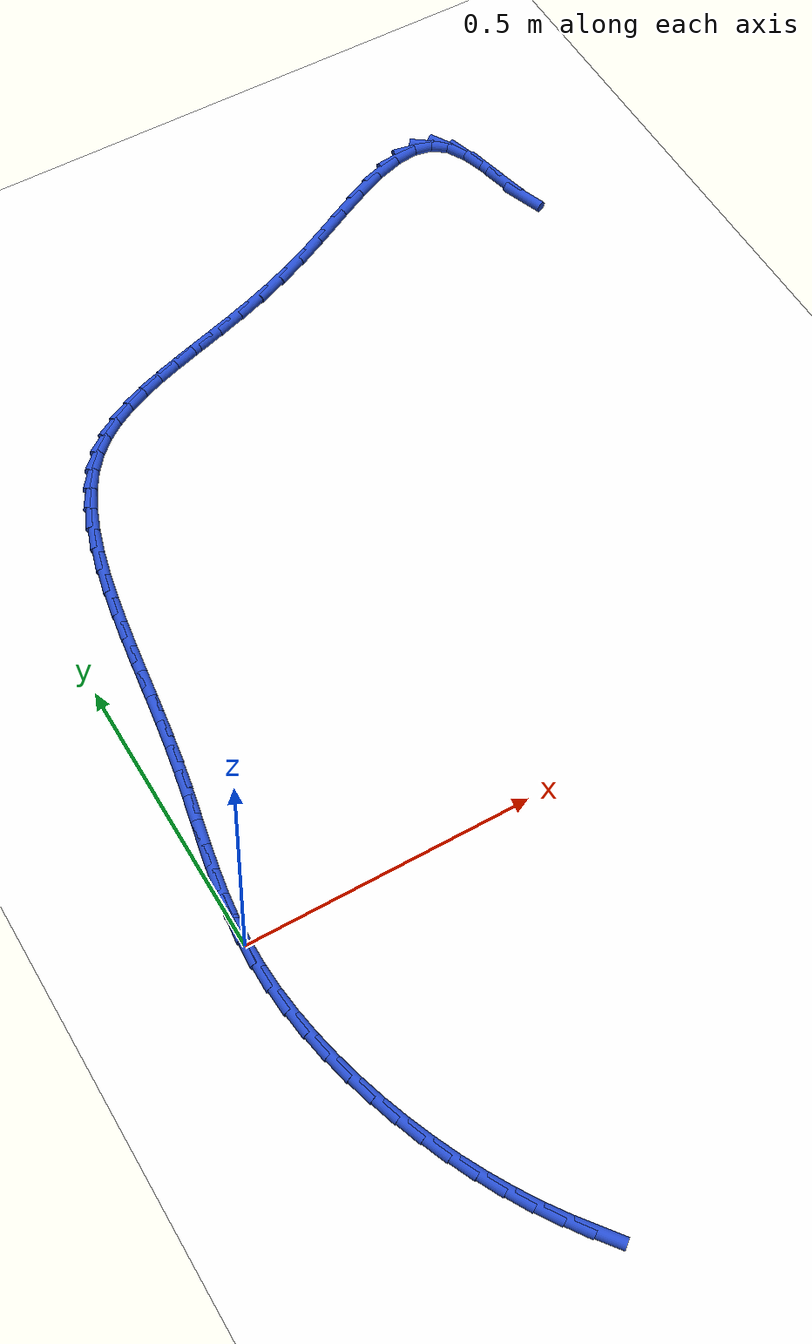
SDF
<sdf version="1.6">
 <world name="default">
  <model name="ground_plane">
   <static>1</static>
   <link name="link">
    <collision name="collision">
     <geometry><plane><normal>0 0 1</normal><size>100 100</size></plane></geometry>
     <surface><friction><ode><mu>100</mu><mu2>50</mu2></ode></friction></surface>
    </collision>
    <visual name="visual">
     <cast_shadows>0</cast_shadows>
     <geometry><plane><normal>0 0 1</normal><size>100 100</size></plane></geometry>
     <material>
      <script><uri>file://media/materials/scripts/gazebo.material</uri><name>Gazebo/WhiteGlow</name></script>
     </material>
    </visual>
   </link>
  </model>
  <model name="line">
   <link name="link_0">
    <pose>2.7755575615628914e-17 -2.0816681711721685e-17 0.01 0 1.57 1.5020953391786414</pose>
    <collision name="collision">
     <geometry><cylinder><radius>0.01</radius><length>0.08</length></cylinder></geometry>
    </collision>
    <visual name="visual">
     <material>
      <script><name>Gazebo/Blue</name><uri>file://media/materials/scripts/gazebo.material</uri></script>
     </material>
     <geometry><cylinder><radius>0.01</radius><length>0.08</length></cylinder></geometry>
    </visual>
   </link>
   <link name="link_1">
    <pose>0.003000123174723722 0.04360056199078417 0.01 0 1.57 1.4487719705072435</pose>
    <collision name="collision">
     <geometry><cylinder><radius>0.01</radius><length>0.08</length></cylinder></geometry>
    </collision>
    <visual name="visual">
     <material>
      <script><name>Gazebo/Blue</name><uri>file://media/materials/scripts/gazebo.material</uri></script>
     </material>
     <geometry><cylinder><radius>0.01</radius><length>0.08</length></cylinder></geometry>
    </visual>
   </link>
   <link name="link_2">
    <pose>0.008314937787957541 0.08693952689009236 0.01 0 1.57 1.4082826827325916</pose>
    <collision name="collision">
     <geometry><cylinder><radius>0.01</radius><length>0.08</length></cylinder></geometry>
    </collision>
    <visual name="visual">
     <material>
      <script><name>Gazebo/Blue</name><uri>file://media/materials/scripts/gazebo.material</uri></script>
     </material>
     <geometry><cylinder><radius>0.01</radius><length>0.08</length></cylinder></geometry>
    </visual>
   </link>
   <link name="link_3">
    <pose>0.01541908743098577 0.13026818073630764 0.01 0 1.57 1.3810436912425075</pose>
    <collision name="collision">
     <geometry><cylinder><radius>0.01</radius><length>0.08</length></cylinder></geometry>
    </collision>
    <visual name="visual">
     <material>
      <script><name>Gazebo/Blue</name><uri>file://media/materials/scripts/gazebo.material</uri></script>
     </material>
     <geometry><cylinder><radius>0.01</radius><length>0.08</length></cylinder></geometry>
    </visual>
   </link>
   <link name="link_4">
    <pose>0.023787215695092654 0.17383780956781278 0.01 0 1.57 1.3669851679821063</pose>
    <collision name="collision">
     <geometry><cylinder><radius>0.01</radius><length>0.08</length></cylinder></geometry>
    </collision>
    <visual name="visual">
     <material>
      <script><name>Gazebo/Blue</name><uri>file://media/materials/scripts/gazebo.material</uri></script>
     </material>
     <geometry><cylinder><radius>0.01</radius><length>0.08</length></cylinder></geometry>
    </visual>
   </link>
   <link name="link_5">
    <pose>0.032893966171562504 0.21789969942299098 0.01 0 1.57 1.3657100421632793</pose>
    <collision name="collision">
     <geometry><cylinder><radius>0.01</radius><length>0.08</length></cylinder></geometry>
    </collision>
    <visual name="visual">
     <material>
      <script><name>Gazebo/Blue</name><uri>file://media/materials/scripts/gazebo.material</uri></script>
     </material>
     <geometry><cylinder><radius>0.01</radius><length>0.08</length></cylinder></geometry>
    </visual>
   </link>
   <link name="link_6">
    <pose>0.04221398245167956 0.26270513634022497 0.01 0 1.57 1.376596604798035</pose>
    <collision name="collision">
     <geometry><cylinder><radius>0.01</radius><length>0.08</length></cylinder></geometry>
    </collision>
    <visual name="visual">
     <material>
      <script><name>Gazebo/Blue</name><uri>file://media/materials/scripts/gazebo.material</uri></script>
     </material>
     <geometry><cylinder><radius>0.01</radius><length>0.08</length></cylinder></geometry>
    </visual>
   </link>
   <link name="link_7">
    <pose>0.051221908126728076 0.30850540635789764 0.01 0 1.57 1.3979150797331559</pose>
    <collision name="collision">
     <geometry><cylinder><radius>0.01</radius><length>0.08</length></cylinder></geometry>
    </collision>
    <visual name="visual">
     <material>
      <script><name>Gazebo/Blue</name><uri>file://media/materials/scripts/gazebo.material</uri></script>
     </material>
     <geometry><cylinder><radius>0.01</radius><length>0.08</length></cylinder></geometry>
    </visual>
   </link>
   <link name="link_8">
    <pose>0.059432024490481364 0.3555212545765996 0.01 0 1.57 1.4178376785264464</pose>
    <collision name="collision">
     <geometry><cylinder><radius>0.01</radius><length>0.08</length></cylinder></geometry>
    </collision>
    <visual name="visual">
     <material>
      <script><name>Gazebo/Blue</name><uri>file://media/materials/scripts/gazebo.material</uri></script>
     </material>
     <geometry><cylinder><radius>0.01</radius><length>0.08</length></cylinder></geometry>
    </visual>
   </link>
   <link name="link_9">
    <pose>0.06684390325323464 0.4035995087532891 0.01 0 1.57 1.4293835000493798</pose>
    <collision name="collision">
     <geometry><cylinder><radius>0.01</radius><length>0.08</length></cylinder></geometry>
    </collision>
    <visual name="visual">
     <material>
      <script><name>Gazebo/Blue</name><uri>file://media/materials/scripts/gazebo.material</uri></script>
     </material>
     <geometry><cylinder><radius>0.01</radius><length>0.08</length></cylinder></geometry>
    </visual>
   </link>
   <link name="link_10">
    <pose>0.07378224819039644 0.4523364816667232 0.01 0 1.57 1.4329565929533143</pose>
    <collision name="collision">
     <geometry><cylinder><radius>0.01</radius><length>0.08</length></cylinder></geometry>
    </collision>
    <visual name="visual">
     <material>
      <script><name>Gazebo/Blue</name><uri>file://media/materials/scripts/gazebo.material</uri></script>
     </material>
     <geometry><cylinder><radius>0.01</radius><length>0.08</length></cylinder></geometry>
    </visual>
   </link>
   <link name="link_11">
    <pose>0.08057774955936517 0.5013238734979911 0.01 0 1.57 1.4287446648675308</pose>
    <collision name="collision">
     <geometry><cylinder><radius>0.01</radius><length>0.08</length></cylinder></geometry>
    </collision>
    <visual name="visual">
     <material>
      <script><name>Gazebo/Blue</name><uri>file://media/materials/scripts/gazebo.material</uri></script>
     </material>
     <geometry><cylinder><radius>0.01</radius><length>0.08</length></cylinder></geometry>
    </visual>
   </link>
   <link name="link_12">
    <pose>0.08756109761753912 0.5501533844281816 0.01 0 1.57 1.4165937577329126</pose>
    <collision name="collision">
     <geometry><cylinder><radius>0.01</radius><length>0.08</length></cylinder></geometry>
    </collision>
    <visual name="visual">
     <material>
      <script><name>Gazebo/Blue</name><uri>file://media/materials/scripts/gazebo.material</uri></script>
     </material>
     <geometry><cylinder><radius>0.01</radius><length>0.08</length></cylinder></geometry>
    </visual>
   </link>
   <link name="link_13">
    <pose>0.09506298262231673 0.598416714638384 0.01 0 1.57 1.3960006500941866</pose>
    <collision name="collision">
     <geometry><cylinder><radius>0.01</radius><length>0.08</length></cylinder></geometry>
    </collision>
    <visual name="visual">
     <material>
      <script><name>Gazebo/Blue</name><uri>file://media/materials/scripts/gazebo.material</uri></script>
     </material>
     <geometry><cylinder><radius>0.01</radius><length>0.08</length></cylinder></geometry>
    </visual>
   </link>
   <link name="link_14">
    <pose>0.10341409483109637 0.6457055643096872 0.01 0 1.57 1.3660844540535957</pose>
    <collision name="collision">
     <geometry><cylinder><radius>0.01</radius><length>0.08</length></cylinder></geometry>
    </collision>
    <visual name="visual">
     <material>
      <script><name>Gazebo/Blue</name><uri>file://media/materials/scripts/gazebo.material</uri></script>
     </material>
     <geometry><cylinder><radius>0.01</radius><length>0.08</length></cylinder></geometry>
    </visual>
   </link>
   <link name="link_15">
    <pose>0.11294512450127644 0.6916116336231806 0.01 0 1.57 1.3255426771105276</pose>
    <collision name="collision">
     <geometry><cylinder><radius>0.01</radius><length>0.08</length></cylinder></geometry>
    </collision>
    <visual name="visual">
     <material>
      <script><name>Gazebo/Blue</name><uri>file://media/materials/scripts/gazebo.material</uri></script>
     </material>
     <geometry><cylinder><radius>0.01</radius><length>0.08</length></cylinder></geometry>
    </visual>
   </link>
   <link name="link_16">
    <pose>0.12398676189025537 0.7357266227599535 0.01 0 1.57 1.2726063591634946</pose>
    <collision name="collision">
     <geometry><cylinder><radius>0.01</radius><length>0.08</length></cylinder></geometry>
    </collision>
    <visual name="visual">
     <material>
      <script><name>Gazebo/Blue</name><uri>file://media/materials/scripts/gazebo.material</uri></script>
     </material>
     <geometry><cylinder><radius>0.01</radius><length>0.08</length></cylinder></geometry>
    </visual>
   </link>
   <link name="link_17">
    <pose>0.13686969725543144 0.7776422319010944 0.01 0 1.57 1.205030766401061</pose>
    <collision name="collision">
     <geometry><cylinder><radius>0.01</radius><length>0.08</length></cylinder></geometry>
    </collision>
    <visual name="visual">
     <material>
      <script><name>Gazebo/Blue</name><uri>file://media/materials/scripts/gazebo.material</uri></script>
     </material>
     <geometry><cylinder><radius>0.01</radius><length>0.08</length></cylinder></geometry>
    </visual>
   </link>
   <link name="link_18">
    <pose>0.1519246208542031 0.8169501612276928 0.01 0 1.57 1.1202024017794339</pose>
    <collision name="collision">
     <geometry><cylinder><radius>0.01</radius><length>0.08</length></cylinder></geometry>
    </collision>
    <visual name="visual">
     <material>
      <script><name>Gazebo/Blue</name><uri>file://media/materials/scripts/gazebo.material</uri></script>
     </material>
     <geometry><cylinder><radius>0.01</radius><length>0.08</length></cylinder></geometry>
    </visual>
   </link>
   <link name="link_19">
    <pose>0.16948222294396872 0.8532421109208379 0.01 0 1.57 1.0155146124670285</pose>
    <collision name="collision">
     <geometry><cylinder><radius>0.01</radius><length>0.08</length></cylinder></geometry>
    </collision>
    <visual name="visual">
     <material>
      <script><name>Gazebo/Blue</name><uri>file://media/materials/scripts/gazebo.material</uri></script>
     </material>
     <geometry><cylinder><radius>0.01</radius><length>0.08</length></cylinder></geometry>
    </visual>
   </link>
   <link name="link_20">
    <pose>0.1898731937821267 0.8861097811616185 0.01 0 1.57 0.8892266930254814</pose>
    <collision name="collision">
     <geometry><cylinder><radius>0.01</radius><length>0.08</length></cylinder></geometry>
    </collision>
    <visual name="visual">
     <material>
      <script><name>Gazebo/Blue</name><uri>file://media/materials/scripts/gazebo.material</uri></script>
     </material>
     <geometry><cylinder><radius>0.01</radius><length>0.08</length></cylinder></geometry>
    </visual>
   </link>
   <link name="link_21">
    <pose>0.21342822351657387 0.9151448723425092 0.01 0 1.57 0.747249347389595</pose>
    <collision name="collision">
     <geometry><cylinder><radius>0.01</radius><length>0.08</length></cylinder></geometry>
    </collision>
    <visual name="visual">
     <material>
      <script><name>Gazebo/Blue</name><uri>file://media/materials/scripts/gazebo.material</uri></script>
     </material>
     <geometry><cylinder><radius>0.01</radius><length>0.08</length></cylinder></geometry>
    </visual>
   </link>
   <link name="link_22">
    <pose>0.24038466947601064 0.9401192569875847 0.01 0 1.57 0.6155932877091566</pose>
    <collision name="collision">
     <geometry><cylinder><radius>0.01</radius><length>0.08</length></cylinder></geometry>
    </collision>
    <visual name="visual">
     <material>
      <script><name>Gazebo/Blue</name><uri>file://media/materials/scripts/gazebo.material</uri></script>
     </material>
     <geometry><cylinder><radius>0.01</radius><length>0.08</length></cylinder></geometry>
    </visual>
   </link>
   <link name="link_23">
    <pose>0.2706183057251787 0.9615028174740483 0.01 0 1.57 0.5055402793163776</pose>
    <collision name="collision">
     <geometry><cylinder><radius>0.01</radius><length>0.08</length></cylinder></geometry>
    </collision>
    <visual name="visual">
     <material>
      <script><name>Gazebo/Blue</name><uri>file://media/materials/scripts/gazebo.material</uri></script>
     </material>
     <geometry><cylinder><radius>0.01</radius><length>0.08</length></cylinder></geometry>
    </visual>
   </link>
   <link name="link_24">
    <pose>0.30391735566333544 0.9799344462889344 0.01 0 1.57 0.4193954468462097</pose>
    <collision name="collision">
     <geometry><cylinder><radius>0.01</radius><length>0.08</length></cylinder></geometry>
    </collision>
    <visual name="visual">
     <material>
      <script><name>Gazebo/Blue</name><uri>file://media/materials/scripts/gazebo.material</uri></script>
     </material>
     <geometry><cylinder><radius>0.01</radius><length>0.08</length></cylinder></geometry>
    </visual>
   </link>
   <link name="link_25">
    <pose>0.3400700426897386 0.9960530359192789 0.01 0 1.57 0.35642935938417514</pose>
    <collision name="collision">
     <geometry><cylinder><radius>0.01</radius><length>0.08</length></cylinder></geometry>
    </collision>
    <visual name="visual">
     <material>
      <script><name>Gazebo/Blue</name><uri>file://media/materials/scripts/gazebo.material</uri></script>
     </material>
     <geometry><cylinder><radius>0.01</radius><length>0.08</length></cylinder></geometry>
    </visual>
   </link>
   <link name="link_26">
    <pose>0.3788645902036459 1.0104974788521168 0.01 0 1.57 0.31447724517197523</pose>
    <collision name="collision">
     <geometry><cylinder><radius>0.01</radius><length>0.08</length></cylinder></geometry>
    </collision>
    <visual name="visual">
     <material>
      <script><name>Gazebo/Blue</name><uri>file://media/materials/scripts/gazebo.material</uri></script>
     </material>
     <geometry><cylinder><radius>0.01</radius><length>0.08</length></cylinder></geometry>
    </visual>
   </link>
   <link name="link_27">
    <pose>0.42008922160431506 1.0239066675744843 0.01 0 1.57 0.2910332260113002</pose>
    <collision name="collision">
     <geometry><cylinder><radius>0.01</radius><length>0.08</length></cylinder></geometry>
    </collision>
    <visual name="visual">
     <material>
      <script><name>Gazebo/Blue</name><uri>file://media/materials/scripts/gazebo.material</uri></script>
     </material>
     <geometry><cylinder><radius>0.01</radius><length>0.08</length></cylinder></geometry>
    </visual>
   </link>
   <link name="link_28">
    <pose>0.4635321602910032 1.0369194945734155 0.01 0 1.57 0.2837791551019473</pose>
    <collision name="collision">
     <geometry><cylinder><radius>0.01</radius><length>0.08</length></cylinder></geometry>
    </collision>
    <visual name="visual">
     <material>
      <script><name>Gazebo/Blue</name><uri>file://media/materials/scripts/gazebo.material</uri></script>
     </material>
     <geometry><cylinder><radius>0.01</radius><length>0.08</length></cylinder></geometry>
    </visual>
   </link>
   <link name="link_29">
    <pose>0.5089816296629687 1.0501748523359467 0.01 0 1.57 0.2907481252536444</pose>
    <collision name="collision">
     <geometry><cylinder><radius>0.01</radius><length>0.08</length></cylinder></geometry>
    </collision>
    <visual name="visual">
     <material>
      <script><name>Gazebo/Blue</name><uri>file://media/materials/scripts/gazebo.material</uri></script>
     </material>
     <geometry><cylinder><radius>0.01</radius><length>0.08</length></cylinder></geometry>
    </visual>
   </link>
   <link name="link_30">
    <pose>0.5562258531194686 1.0643116333491127 0.01 0 1.57 0.3103046155513398</pose>
    <collision name="collision">
     <geometry><cylinder><radius>0.01</radius><length>0.08</length></cylinder></geometry>
    </collision>
    <visual name="visual">
     <material>
      <script><name>Gazebo/Blue</name><uri>file://media/materials/scripts/gazebo.material</uri></script>
     </material>
     <geometry><cylinder><radius>0.01</radius><length>0.08</length></cylinder></geometry>
    </visual>
   </link>
   <link name="link_31">
    <pose>0.605053054059761 1.0799687300999492 0.01 0 1.57 0.3410491732848912</pose>
    <collision name="collision">
     <geometry><cylinder><radius>0.01</radius><length>0.08</length></cylinder></geometry>
    </collision>
    <visual name="visual">
     <material>
      <script><name>Gazebo/Blue</name><uri>file://media/materials/scripts/gazebo.material</uri></script>
     </material>
     <geometry><cylinder><radius>0.01</radius><length>0.08</length></cylinder></geometry>
    </visual>
   </link>
   <link name="link_32">
    <pose>0.655251455883103 1.0977850350754914 0.01 0 1.57 0.3817021979175472</pose>
    <collision name="collision">
     <geometry><cylinder><radius>0.01</radius><length>0.08</length></cylinder></geometry>
    </collision>
    <visual name="visual">
     <material>
      <script><name>Gazebo/Blue</name><uri>file://media/materials/scripts/gazebo.material</uri></script>
     </material>
     <geometry><cylinder><radius>0.01</radius><length>0.08</length></cylinder></geometry>
    </visual>
   </link>
   <link name="link_33">
    <pose>0.7066092819887524 1.1183994407627744 0.01 0 1.57 0.4292885203098368</pose>
    <collision name="collision">
     <geometry><cylinder><radius>0.01</radius><length>0.08</length></cylinder></geometry>
    </collision>
    <visual name="visual">
     <material>
      <script><name>Gazebo/Blue</name><uri>file://media/materials/scripts/gazebo.material</uri></script>
     </material>
     <geometry><cylinder><radius>0.01</radius><length>0.08</length></cylinder></geometry>
    </visual>
   </link>
   <link name="link_34">
    <pose>0.7588811510512592 1.142327420781965 0.01 0 1.57 0.46237842196865514</pose>
    <collision name="collision">
     <geometry><cylinder><radius>0.01</radius><length>0.08</length></cylinder></geometry>
    </collision>
    <visual name="visual">
     <material>
      <script><name>Gazebo/Blue</name><uri>file://media/materials/scripts/gazebo.material</uri></script>
     </material>
     <geometry><cylinder><radius>0.01</radius><length>0.08</length></cylinder></geometry>
    </visual>
   </link>
   <link name="link_35">
    <pose>0.8113898635616469 1.1684985256020368 0.01 0 1.57 0.4691872814323697</pose>
    <collision name="collision">
     <geometry><cylinder><radius>0.01</radius><length>0.08</length></cylinder></geometry>
    </collision>
    <visual name="visual">
     <material>
      <script><name>Gazebo/Blue</name><uri>file://media/materials/scripts/gazebo.material</uri></script>
     </material>
     <geometry><cylinder><radius>0.01</radius><length>0.08</length></cylinder></geometry>
    </visual>
   </link>
   <link name="link_36">
    <pose>0.8631587479808225 1.194742445510482 0.01 0 1.57 0.4491761531706543</pose>
    <collision name="collision">
     <geometry><cylinder><radius>0.01</radius><length>0.08</length></cylinder></geometry>
    </collision>
    <visual name="visual">
     <material>
      <script><name>Gazebo/Blue</name><uri>file://media/materials/scripts/gazebo.material</uri></script>
     </material>
     <geometry><cylinder><radius>0.01</radius><length>0.08</length></cylinder></geometry>
    </visual>
   </link>
   <link name="link_37">
    <pose>0.9132051137208044 1.218866764849879 0.01 0 1.57 0.3963527560962091</pose>
    <collision name="collision">
     <geometry><cylinder><radius>0.01</radius><length>0.08</length></cylinder></geometry>
    </collision>
    <visual name="visual">
     <material>
      <script><name>Gazebo/Blue</name><uri>file://media/materials/scripts/gazebo.material</uri></script>
     </material>
     <geometry><cylinder><radius>0.01</radius><length>0.08</length></cylinder></geometry>
    </visual>
   </link>
   <link name="link_38">
    <pose>0.9605462701936123 1.2386790679628068 0.01 0 1.57 0.295904062783631</pose>
    <collision name="collision">
     <geometry><cylinder><radius>0.01</radius><length>0.08</length></cylinder></geometry>
    </collision>
    <visual name="visual">
     <material>
      <script><name>Gazebo/Blue</name><uri>file://media/materials/scripts/gazebo.material</uri></script>
     </material>
     <geometry><cylinder><radius>0.01</radius><length>0.08</length></cylinder></geometry>
    </visual>
   </link>
   <link name="link_39">
    <pose>1.0041995268112665 1.2519869391918461 0.01 0 1.57 0.11773689323920024</pose>
    <collision name="collision">
     <geometry><cylinder><radius>0.01</radius><length>0.08</length></cylinder></geometry>
    </collision>
    <visual name="visual">
     <material>
      <script><name>Gazebo/Blue</name><uri>file://media/materials/scripts/gazebo.material</uri></script>
     </material>
     <geometry><cylinder><radius>0.01</radius><length>0.08</length></cylinder></geometry>
    </visual>
   </link>
   <link name="link_40">
    <pose>1.0431821929857856 1.2565979628795751 0.01 0 1.57 -0.18618778433315314</pose>
    <collision name="collision">
     <geometry><cylinder><radius>0.01</radius><length>0.08</length></cylinder></geometry>
    </collision>
    <visual name="visual">
     <material>
      <script><name>Gazebo/Blue</name><uri>file://media/materials/scripts/gazebo.material</uri></script>
     </material>
     <geometry><cylinder><radius>0.01</radius><length>0.08</length></cylinder></geometry>
    </visual>
   </link>
   <link name="link_41">
    <pose>1.0765115781291899 1.2503197233685737 0.01 0 1.57 -0.6274848108858475</pose>
    <collision name="collision">
     <geometry><cylinder><radius>0.01</radius><length>0.08</length></cylinder></geometry>
    </collision>
    <visual name="visual">
     <material>
      <script><name>Gazebo/Blue</name><uri>file://media/materials/scripts/gazebo.material</uri></script>
     </material>
     <geometry><cylinder><radius>0.01</radius><length>0.08</length></cylinder></geometry>
    </visual>
   </link>
   <link name="link_42">
    <pose>1.1032049916534987 1.2309598050014217 0.01 0 1.57 -1.048942900025096</pose>
    <collision name="collision">
     <geometry><cylinder><radius>0.01</radius><length>0.08</length></cylinder></geometry>
    </collision>
    <visual name="visual">
     <material>
      <script><name>Gazebo/Blue</name><uri>file://media/materials/scripts/gazebo.material</uri></script>
     </material>
     <geometry><cylinder><radius>0.01</radius><length>0.08</length></cylinder></geometry>
    </visual>
   </link>
   <link name="link_43">
    <pose>1.1226563271066412 1.1971328943556334 0.01 0 1.57 -1.2640495415212665</pose>
    <collision name="collision">
     <geometry><cylinder><radius>0.01</radius><length>0.08</length></cylinder></geometry>
    </collision>
    <visual name="visual">
     <material>
      <script><name>Gazebo/Blue</name><uri>file://media/materials/scripts/gazebo.material</uri></script>
     </material>
     <geometry><cylinder><radius>0.01</radius><length>0.08</length></cylinder></geometry>
    </visual>
   </link>
   <link name="link_44">
    <pose>1.1367209531095206 1.1527291578900865 0.01 0 1.57 -1.3397152905847816</pose>
    <collision name="collision">
     <geometry><cylinder><radius>0.01</radius><length>0.08</length></cylinder></geometry>
    </collision>
    <visual name="visual">
     <material>
      <script><name>Gazebo/Blue</name><uri>file://media/materials/scripts/gazebo.material</uri></script>
     </material>
     <geometry><cylinder><radius>0.01</radius><length>0.08</length></cylinder></geometry>
    </visual>
   </link>
   <link name="link_45">
    <pose>1.148243070122668 1.1037580451444797 0.01 0 1.57 -1.326894126529341</pose>
    <collision name="collision">
     <geometry><cylinder><radius>0.01</radius><length>0.08</length></cylinder></geometry>
    </collision>
    <visual name="visual">
     <material>
      <script><name>Gazebo/Blue</name><uri>file://media/materials/scripts/gazebo.material</uri></script>
     </material>
     <geometry><cylinder><radius>0.01</radius><length>0.08</length></cylinder></geometry>
    </visual>
   </link>
   <link name="link_46">
    <pose>1.1600695557725238 1.056234743411067 0.01 0 1.57 -1.2130082496170382</pose>
    <collision name="collision">
     <geometry><cylinder><radius>0.01</radius><length>0.08</length></cylinder></geometry>
    </collision>
    <visual name="visual">
     <material>
      <script><name>Gazebo/Blue</name><uri>file://media/materials/scripts/gazebo.material</uri></script>
     </material>
     <geometry><cylinder><radius>0.01</radius><length>0.08</length></cylinder></geometry>
    </visual>
   </link>
   <link name="link_175">
    <pose>0.21937749154312902 -0.6247329273949606 0.01 0 1.57 -0.9082334341196385</pose>
    <collision name="collision">
     <geometry><cylinder><radius>0.01</radius><length>0.08</length></cylinder></geometry>
    </collision>
    <visual name="visual">
     <material>
      <script><name>Gazebo/Blue</name><uri>file://media/materials/scripts/gazebo.material</uri></script>
     </material>
     <geometry><cylinder><radius>0.01</radius><length>0.08</length></cylinder></geometry>
    </visual>
   </link>
   <link name="link_176">
    <pose>0.1920531059822676 -0.5897115295174478 0.01 0 1.57 -0.9592105220616826</pose>
    <collision name="collision">
     <geometry><cylinder><radius>0.01</radius><length>0.08</length></cylinder></geometry>
    </collision>
    <visual name="visual">
     <material>
      <script><name>Gazebo/Blue</name><uri>file://media/materials/scripts/gazebo.material</uri></script>
     </material>
     <geometry><cylinder><radius>0.01</radius><length>0.08</length></cylinder></geometry>
    </visual>
   </link>
   <link name="link_177">
    <pose>0.16646152306973375 -0.553218955459227 0.01 0 1.57 -1.0083057065604737</pose>
    <collision name="collision">
     <geometry><cylinder><radius>0.01</radius><length>0.08</length></cylinder></geometry>
    </collision>
    <visual name="visual">
     <material>
      <script><name>Gazebo/Blue</name><uri>file://media/materials/scripts/gazebo.material</uri></script>
     </material>
     <geometry><cylinder><radius>0.01</radius><length>0.08</length></cylinder></geometry>
    </visual>
   </link>
   <link name="link_178">
    <pose>0.14259898713449998 -0.5153674229893335 0.01 0 1.57 -1.0555774120838415</pose>
    <collision name="collision">
     <geometry><cylinder><radius>0.01</radius><length>0.08</length></cylinder></geometry>
    </collision>
    <visual name="visual">
     <material>
      <script><name>Gazebo/Blue</name><uri>file://media/materials/scripts/gazebo.material</uri></script>
     </material>
     <geometry><cylinder><radius>0.01</radius><length>0.08</length></cylinder></geometry>
    </visual>
   </link>
   <link name="link_179">
    <pose>0.12046100254087813 -0.4762703090458387 0.01 0 1.57 -1.101136102454159</pose>
    <collision name="collision">
     <geometry><cylinder><radius>0.01</radius><length>0.08</length></cylinder></geometry>
    </collision>
    <visual name="visual">
     <material>
      <script><name>Gazebo/Blue</name><uri>file://media/materials/scripts/gazebo.material</uri></script>
     </material>
     <geometry><cylinder><radius>0.01</radius><length>0.08</length></cylinder></geometry>
    </visual>
   </link>
   <link name="link_180">
    <pose>0.10004307365317895 -0.4360409905668123 0.01 0 1.57 -1.1451093202442904</pose>
    <collision name="collision">
     <geometry><cylinder><radius>0.01</radius><length>0.08</length></cylinder></geometry>
    </collision>
    <visual name="visual">
     <material>
      <script><name>Gazebo/Blue</name><uri>file://media/materials/scripts/gazebo.material</uri></script>
     </material>
     <geometry><cylinder><radius>0.01</radius><length>0.08</length></cylinder></geometry>
    </visual>
   </link>
   <link name="link_181">
    <pose>0.08134070483571443 -0.39479284449032587 0.01 0 1.57 -1.1876369349832703</pose>
    <collision name="collision">
     <geometry><cylinder><radius>0.01</radius><length>0.08</length></cylinder></geometry>
    </collision>
    <visual name="visual">
     <material>
      <script><name>Gazebo/Blue</name><uri>file://media/materials/scripts/gazebo.material</uri></script>
     </material>
     <geometry><cylinder><radius>0.01</radius><length>0.08</length></cylinder></geometry>
    </visual>
   </link>
   <link name="link_182">
    <pose>0.06434940045279622 -0.3526392477544507 0.01 0 1.57 -1.2288876232827988</pose>
    <collision name="collision">
     <geometry><cylinder><radius>0.01</radius><length>0.08</length></cylinder></geometry>
    </collision>
    <visual name="visual">
     <material>
      <script><name>Gazebo/Blue</name><uri>file://media/materials/scripts/gazebo.material</uri></script>
     </material>
     <geometry><cylinder><radius>0.01</radius><length>0.08</length></cylinder></geometry>
    </visual>
   </link>
   <link name="link_183">
    <pose>0.04906577791890202 -0.3096939560487251 0.01 0 1.57 -1.2701478147037688</pose>
    <collision name="collision">
     <geometry><cylinder><radius>0.01</radius><length>0.08</length></cylinder></geometry>
    </collision>
    <visual name="visual">
     <material>
      <script><name>Gazebo/Blue</name><uri>file://media/materials/scripts/gazebo.material</uri></script>
     </material>
     <geometry><cylinder><radius>0.01</radius><length>0.08</length></cylinder></geometry>
    </visual>
   </link>
   <link name="link_184">
    <pose>0.035546905561039156 -0.26609129544894145 0.01 0 1.57 -1.3134115776341717</pose>
    <collision name="collision">
     <geometry><cylinder><radius>0.01</radius><length>0.08</length></cylinder></geometry>
    </collision>
    <visual name="visual">
     <material>
      <script><name>Gazebo/Blue</name><uri>file://media/materials/scripts/gazebo.material</uri></script>
     </material>
     <geometry><cylinder><radius>0.01</radius><length>0.08</length></cylinder></geometry>
    </visual>
   </link>
   <link name="link_185">
    <pose>0.023940080421461153 -0.2219962952816137 0.01 0 1.57 -1.3592385057193395</pose>
    <collision name="collision">
     <geometry><cylinder><radius>0.01</radius><length>0.08</length></cylinder></geometry>
    </collision>
    <visual name="visual">
     <material>
      <script><name>Gazebo/Blue</name><uri>file://media/materials/scripts/gazebo.material</uri></script>
     </material>
     <geometry><cylinder><radius>0.01</radius><length>0.08</length></cylinder></geometry>
    </visual>
   </link>
   <link name="link_186">
    <pose>0.014399969271658371 -0.17757649266297684 0.01 0 1.57 -1.4080666084493592</pose>
    <collision name="collision">
     <geometry><cylinder><radius>0.01</radius><length>0.08</length></cylinder></geometry>
    </collision>
    <visual name="visual">
     <material>
      <script><name>Gazebo/Blue</name><uri>file://media/materials/scripts/gazebo.material</uri></script>
     </material>
     <geometry><cylinder><radius>0.01</radius><length>0.08</length></cylinder></geometry>
    </visual>
   </link>
   <link name="link_187">
    <pose>0.007081238883120554 -0.1329994247092626 0.01 0 1.57 -1.4603426562219943</pose>
    <collision name="collision">
     <geometry><cylinder><radius>0.01</radius><length>0.08</length></cylinder></geometry>
    </collision>
    <visual name="visual">
     <material>
      <script><name>Gazebo/Blue</name><uri>file://media/materials/scripts/gazebo.material</uri></script>
     </material>
     <geometry><cylinder><radius>0.01</radius><length>0.08</length></cylinder></geometry>
    </visual>
   </link>
   <link name="link_188">
    <pose>0.0021385560273381116 -0.0884326285367059 0.01 0 1.57 -1.5165126158815105</pose>
    <collision name="collision">
     <geometry><cylinder><radius>0.01</radius><length>0.08</length></cylinder></geometry>
    </collision>
    <visual name="visual">
     <material>
      <script><name>Gazebo/Blue</name><uri>file://media/materials/scripts/gazebo.material</uri></script>
     </material>
     <geometry><cylinder><radius>0.01</radius><length>0.08</length></cylinder></geometry>
    </visual>
   </link>
   <link name="link_189">
    <pose>-0.0002734125241987892 -0.0440436412615404 0.01 0 1.57 1.5645886426810611</pose>
    <collision name="collision">
     <geometry><cylinder><radius>0.01</radius><length>0.08</length></cylinder></geometry>
    </collision>
    <visual name="visual">
     <material>
      <script><name>Gazebo/Blue</name><uri>file://media/materials/scripts/gazebo.material</uri></script>
     </material>
     <geometry><cylinder><radius>0.01</radius><length>0.08</length></cylinder></geometry>
    </visual>
   </link>
   <link name="link_190">
    <pose>1.734723475976807e-17 6.938893903907228e-18 0.01 0 1.57 1.4993946858180114</pose>
    <collision name="collision">
     <geometry><cylinder><radius>0.01</radius><length>0.08</length></cylinder></geometry>
    </collision>
    <visual name="visual">
     <material>
      <script><name>Gazebo/Blue</name><uri>file://media/materials/scripts/gazebo.material</uri></script>
     </material>
     <geometry><cylinder><radius>0.01</radius><length>0.08</length></cylinder></geometry>
    </visual>
   </link>
   <link name="link_191">
    <pose>0.003113460371424707 0.04353075813168152 0.01 0 1.57 1.4993946858180116</pose>
    <collision name="collision">
     <geometry><cylinder><radius>0.01</radius><length>0.08</length></cylinder></geometry>
    </collision>
    <visual name="visual">
     <material>
      <script><name>Gazebo/Blue</name><uri>file://media/materials/scripts/gazebo.material</uri></script>
     </material>
     <geometry><cylinder><radius>0.01</radius><length>0.08</length></cylinder></geometry>
    </visual>
   </link>
  </model>
 </world>
</sdf>
